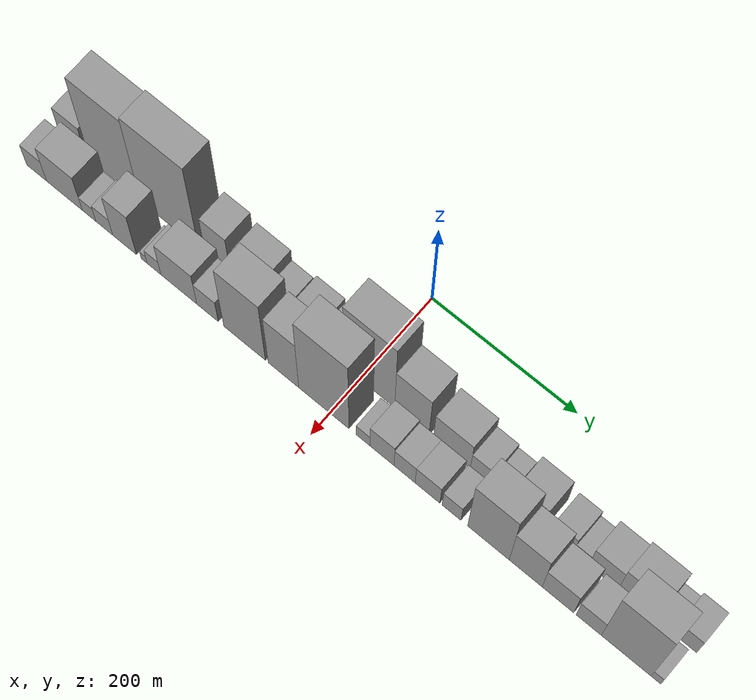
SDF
<sdf version="1.6">
 <world name="default">
  <scene>
   <sky><clouds><speed>12</speed></clouds></sky>
   <ambient>0.4 0.4 0.4 1</ambient>
   <background>0.7 0.7 0.7 1</background>
   <shadows>1</shadows>
  </scene>
  <gravity>0 0 -9.8066</gravity>
  <magnetic_field>6e-06 2.3e-05 -4.2e-05</magnetic_field>
  <physics default="0" name="default_physics" type="ode">
   <ode>
    <solver>
     <type>quick</type>
     <iters>10</iters>
     <sor>1.0</sor>
     <use_dynamic_moi_rescaling>0</use_dynamic_moi_rescaling>
    </solver>
    <constraints>
     <cfm>0</cfm>
     <erp>0.2</erp>
     <contact_max_correcting_vel>100</contact_max_correcting_vel>
     <contact_surface_layer>0.001</contact_surface_layer>
    </constraints>
   </ode>
   <max_step_size>0.004</max_step_size>
   <real_time_factor>1</real_time_factor>
   <real_time_update_rate>250</real_time_update_rate>
  </physics>
  <light name="sun" type="directional">
   <pose>0 0 10 0 0 0</pose>
   <diffuse>0.8 0.8 0.8 1</diffuse>
   <specular>0.2 0.2 0.2 1</specular>
   <attenuation>
    <range>1000</range>
    <constant>0.9</constant>
    <linear>0.01</linear>
    <quadratic>0.001</quadratic>
   </attenuation>
   <direction>-0.5 0.1 -0.9</direction>
  </light>
  <model name="building_1">
   <static>1</static>
   <pose>100.0000 -413.8434 0 0.000000 0.000000 0.000000</pose>
   <link name="link">
    <pose>0 0 37.50 0 0 0</pose>
    <collision name="collision"><geometry><box><size>40.0000 38.3133 75.0000</size></box></geometry></collision>
    <visual name="visual">
     <cast_shadows>0</cast_shadows>
     <geometry><box><size>40.0000 38.3133 75.0000</size></box></geometry>
     <material>
      <script>
       <uri>model://grey_wall/materials/scripts</uri>
       <uri>model://grey_wall/materials/textures</uri>
       <name>vrc/grey_wall</name>
      </script>
     </material>
    </visual>
   </link>
  </model>
  <model name="building_2">
   <static>1</static>
   <pose>100.0000 -351.5835 0 0.000000 0.000000 0.000000</pose>
   <link name="link">
    <pose>0 0 105.00 0 0 0</pose>
    <collision name="collision"><geometry><box><size>40.0000 74.2064 210.0000</size></box></geometry></collision>
    <visual name="visual">
     <cast_shadows>0</cast_shadows>
     <geometry><box><size>40.0000 74.2064 210.0000</size></box></geometry>
     <material>
      <script>
       <uri>model://grey_wall/materials/scripts</uri>
       <uri>model://grey_wall/materials/textures</uri>
       <name>vrc/grey_wall</name>
      </script>
     </material>
    </visual>
   </link>
  </model>
  <model name="building_3">
   <static>1</static>
   <pose>100.0000 -271.9472 0 0.000000 0.000000 0.000000</pose>
   <link name="link">
    <pose>0 0 109.50 0 0 0</pose>
    <collision name="collision"><geometry><box><size>40.0000 85.0663 219.0000</size></box></geometry></collision>
    <visual name="visual">
     <cast_shadows>0</cast_shadows>
     <geometry><box><size>40.0000 85.0663 219.0000</size></box></geometry>
     <material>
      <script>
       <uri>model://grey_wall/materials/scripts</uri>
       <uri>model://grey_wall/materials/textures</uri>
       <name>vrc/grey_wall</name>
      </script>
     </material>
    </visual>
   </link>
  </model>
  <model name="building_4">
   <static>1</static>
   <pose>100.0000 -201.3344 0 0.000000 0.000000 0.000000</pose>
   <link name="link">
    <pose>0 0 51.00 0 0 0</pose>
    <collision name="collision"><geometry><box><size>40.0000 36.1593 102.0000</size></box></geometry></collision>
    <visual name="visual">
     <cast_shadows>0</cast_shadows>
     <geometry><box><size>40.0000 36.1593 102.0000</size></box></geometry>
     <material>
      <script>
       <uri>model://grey_wall/materials/scripts</uri>
       <uri>model://grey_wall/materials/textures</uri>
       <name>vrc/grey_wall</name>
      </script>
     </material>
    </visual>
   </link>
  </model>
  <model name="building_5">
   <static>1</static>
   <pose>100.0000 -151.6545 0 0.000000 0.000000 0.000000</pose>
   <link name="link">
    <pose>0 0 43.50 0 0 0</pose>
    <collision name="collision"><geometry><box><size>40.0000 47.2005 87.0000</size></box></geometry></collision>
    <visual name="visual">
     <cast_shadows>0</cast_shadows>
     <geometry><box><size>40.0000 47.2005 87.0000</size></box></geometry>
     <material>
      <script>
       <uri>model://grey_wall/materials/scripts</uri>
       <uri>model://grey_wall/materials/textures</uri>
       <name>vrc/grey_wall</name>
      </script>
     </material>
    </visual>
   </link>
  </model>
  <model name="building_6">
   <static>1</static>
   <pose>100.0000 -113.1142 0 0.000000 0.000000 0.000000</pose>
   <link name="link">
    <pose>0 0 28.50 0 0 0</pose>
    <collision name="collision"><geometry><box><size>40.0000 29.8802 57.0000</size></box></geometry></collision>
    <visual name="visual">
     <cast_shadows>0</cast_shadows>
     <geometry><box><size>40.0000 29.8802 57.0000</size></box></geometry>
     <material>
      <script>
       <uri>model://grey_wall/materials/scripts</uri>
       <uri>model://grey_wall/materials/textures</uri>
       <name>vrc/grey_wall</name>
      </script>
     </material>
    </visual>
   </link>
  </model>
  <model name="building_7">
   <static>1</static>
   <pose>100.0000 -73.5311 0 0.000000 0.000000 0.000000</pose>
   <link name="link">
    <pose>0 0 36.00 0 0 0</pose>
    <collision name="collision"><geometry><box><size>40.0000 39.2860 72.0000</size></box></geometry></collision>
    <visual name="visual">
     <cast_shadows>0</cast_shadows>
     <geometry><box><size>40.0000 39.2860 72.0000</size></box></geometry>
     <material>
      <script>
       <uri>model://grey_wall/materials/scripts</uri>
       <uri>model://grey_wall/materials/textures</uri>
       <name>vrc/grey_wall</name>
      </script>
     </material>
    </visual>
   </link>
  </model>
  <model name="building_8">
   <static>1</static>
   <pose>100.0000 -38.1155 0 0.000000 0.000000 0.000000</pose>
   <link name="link">
    <pose>0 0 30.00 0 0 0</pose>
    <collision name="collision"><geometry><box><size>40.0000 31.5453 60.0000</size></box></geometry></collision>
    <visual name="visual">
     <cast_shadows>0</cast_shadows>
     <geometry><box><size>40.0000 31.5453 60.0000</size></box></geometry>
     <material>
      <script>
       <uri>model://grey_wall/materials/scripts</uri>
       <uri>model://grey_wall/materials/textures</uri>
       <name>vrc/grey_wall</name>
      </script>
     </material>
    </visual>
   </link>
  </model>
  <model name="building_9">
   <static>1</static>
   <pose>100.0000 12.9150 0 0.000000 0.000000 0.000000</pose>
   <link name="link">
    <pose>0 0 96.00 0 0 0</pose>
    <collision name="collision"><geometry><box><size>40.0000 70.5156 192.0000</size></box></geometry></collision>
    <visual name="visual">
     <cast_shadows>0</cast_shadows>
     <geometry><box><size>40.0000 70.5156 192.0000</size></box></geometry>
     <material>
      <script>
       <uri>model://grey_wall/materials/scripts</uri>
       <uri>model://grey_wall/materials/textures</uri>
       <name>vrc/grey_wall</name>
      </script>
     </material>
    </visual>
   </link>
  </model>
  <model name="building_10">
   <static>1</static>
   <pose>100.0000 71.7450 0 0.000000 0.000000 0.000000</pose>
   <link name="link">
    <pose>0 0 60.00 0 0 0</pose>
    <collision name="collision"><geometry><box><size>40.0000 47.1444 120.0000</size></box></geometry></collision>
    <visual name="visual">
     <cast_shadows>0</cast_shadows>
     <geometry><box><size>40.0000 47.1444 120.0000</size></box></geometry>
     <material>
      <script>
       <uri>model://grey_wall/materials/scripts</uri>
       <uri>model://grey_wall/materials/textures</uri>
       <name>vrc/grey_wall</name>
      </script>
     </material>
    </visual>
   </link>
  </model>
  <model name="building_11">
   <static>1</static>
   <pose>100.0000 126.4059 0 0.000000 0.000000 0.000000</pose>
   <link name="link">
    <pose>0 0 42.00 0 0 0</pose>
    <collision name="collision"><geometry><box><size>40.0000 50.1772 84.0000</size></box></geometry></collision>
    <visual name="visual">
     <cast_shadows>0</cast_shadows>
     <geometry><box><size>40.0000 50.1772 84.0000</size></box></geometry>
     <material>
      <script>
       <uri>model://grey_wall/materials/scripts</uri>
       <uri>model://grey_wall/materials/textures</uri>
       <name>vrc/grey_wall</name>
      </script>
     </material>
    </visual>
   </link>
  </model>
  <model name="building_12">
   <static>1</static>
   <pose>100.0000 166.1870 0 0.000000 0.000000 0.000000</pose>
   <link name="link">
    <pose>0 0 27.00 0 0 0</pose>
    <collision name="collision"><geometry><box><size>40.0000 29.3850 54.0000</size></box></geometry></collision>
    <visual name="visual">
     <cast_shadows>0</cast_shadows>
     <geometry><box><size>40.0000 29.3850 54.0000</size></box></geometry>
     <material>
      <script>
       <uri>model://grey_wall/materials/scripts</uri>
       <uri>model://grey_wall/materials/textures</uri>
       <name>vrc/grey_wall</name>
      </script>
     </material>
    </visual>
   </link>
  </model>
  <model name="building_13">
   <static>1</static>
   <pose>100.0000 193.1031 0 0.000000 0.000000 0.000000</pose>
   <link name="link">
    <pose>0 0 21.00 0 0 0</pose>
    <collision name="collision"><geometry><box><size>40.0000 24.4473 42.0000</size></box></geometry></collision>
    <visual name="visual">
     <cast_shadows>0</cast_shadows>
     <geometry><box><size>40.0000 24.4473 42.0000</size></box></geometry>
     <material>
      <script>
       <uri>model://grey_wall/materials/scripts</uri>
       <uri>model://grey_wall/materials/textures</uri>
       <name>vrc/grey_wall</name>
      </script>
     </material>
    </visual>
   </link>
  </model>
  <model name="building_14">
   <static>1</static>
   <pose>100.0000 230.0118 0 0.000000 0.000000 0.000000</pose>
   <link name="link">
    <pose>0 0 37.50 0 0 0</pose>
    <collision name="collision"><geometry><box><size>40.0000 41.3701 75.0000</size></box></geometry></collision>
    <visual name="visual">
     <cast_shadows>0</cast_shadows>
     <geometry><box><size>40.0000 41.3701 75.0000</size></box></geometry>
     <material>
      <script>
       <uri>model://grey_wall/materials/scripts</uri>
       <uri>model://grey_wall/materials/textures</uri>
       <name>vrc/grey_wall</name>
      </script>
     </material>
    </visual>
   </link>
  </model>
  <model name="building_15">
   <static>1</static>
   <pose>100.0000 274.9624 0 0.000000 0.000000 0.000000</pose>
   <link name="link">
    <pose>0 0 27.00 0 0 0</pose>
    <collision name="collision"><geometry><box><size>40.0000 30.5310 54.0000</size></box></geometry></collision>
    <visual name="visual">
     <cast_shadows>0</cast_shadows>
     <geometry><box><size>40.0000 30.5310 54.0000</size></box></geometry>
     <material>
      <script>
       <uri>model://grey_wall/materials/scripts</uri>
       <uri>model://grey_wall/materials/textures</uri>
       <name>vrc/grey_wall</name>
      </script>
     </material>
    </visual>
   </link>
  </model>
  <model name="building_16">
   <static>1</static>
   <pose>100.0000 300.3719 0 0.000000 0.000000 0.000000</pose>
   <link name="link">
    <pose>0 0 18.00 0 0 0</pose>
    <collision name="collision"><geometry><box><size>40.0000 20.2881 36.0000</size></box></geometry></collision>
    <visual name="visual">
     <cast_shadows>0</cast_shadows>
     <geometry><box><size>40.0000 20.2881 36.0000</size></box></geometry>
     <material>
      <script>
       <uri>model://grey_wall/materials/scripts</uri>
       <uri>model://grey_wall/materials/textures</uri>
       <name>vrc/grey_wall</name>
      </script>
     </material>
    </visual>
   </link>
  </model>
  <model name="building_17">
   <static>1</static>
   <pose>100.0000 329.7870 0 0.000000 0.000000 0.000000</pose>
   <link name="link">
    <pose>0 0 34.50 0 0 0</pose>
    <collision name="collision"><geometry><box><size>40.0000 38.5421 69.0000</size></box></geometry></collision>
    <visual name="visual">
     <cast_shadows>0</cast_shadows>
     <geometry><box><size>40.0000 38.5421 69.0000</size></box></geometry>
     <material>
      <script>
       <uri>model://grey_wall/materials/scripts</uri>
       <uri>model://grey_wall/materials/textures</uri>
       <name>vrc/grey_wall</name>
      </script>
     </material>
    </visual>
   </link>
  </model>
  <model name="building_18">
   <static>1</static>
   <pose>100.0000 373.8035 0 0.000000 0.000000 0.000000</pose>
   <link name="link">
    <pose>0 0 42.00 0 0 0</pose>
    <collision name="collision"><geometry><box><size>40.0000 49.4909 84.0000</size></box></geometry></collision>
    <visual name="visual">
     <cast_shadows>0</cast_shadows>
     <geometry><box><size>40.0000 49.4909 84.0000</size></box></geometry>
     <material>
      <script>
       <uri>model://grey_wall/materials/scripts</uri>
       <uri>model://grey_wall/materials/textures</uri>
       <name>vrc/grey_wall</name>
      </script>
     </material>
    </visual>
   </link>
  </model>
  <model name="building_19">
   <static>1</static>
   <pose>100.0000 408.7993 0 0.000000 0.000000 0.000000</pose>
   <link name="link">
    <pose>0 0 18.00 0 0 0</pose>
    <collision name="collision"><geometry><box><size>40.0000 20.5007 36.0000</size></box></geometry></collision>
    <visual name="visual">
     <cast_shadows>0</cast_shadows>
     <geometry><box><size>40.0000 20.5007 36.0000</size></box></geometry>
     <material>
      <script>
       <uri>model://grey_wall/materials/scripts</uri>
       <uri>model://grey_wall/materials/textures</uri>
       <name>vrc/grey_wall</name>
      </script>
     </material>
    </visual>
   </link>
  </model>
  <model name="building_20">
   <static>1</static>
   <pose>100.0000 434.9846 0 0.000000 0.000000 0.000000</pose>
   <link name="link">
    <pose>0 0 27.00 0 0 0</pose>
    <collision name="collision"><geometry><box><size>40.0000 31.8700 54.0000</size></box></geometry></collision>
    <visual name="visual">
     <cast_shadows>0</cast_shadows>
     <geometry><box><size>40.0000 31.8700 54.0000</size></box></geometry>
     <material>
      <script>
       <uri>model://grey_wall/materials/scripts</uri>
       <uri>model://grey_wall/materials/textures</uri>
       <name>vrc/grey_wall</name>
      </script>
     </material>
    </visual>
   </link>
  </model>
  <model name="building_21">
   <static>1</static>
   <pose>149.0000 -423.0681 0 0.000000 0.000000 0.000000</pose>
   <link name="link">
    <pose>0 0 27.00 0 0 0</pose>
    <collision name="collision"><geometry><box><size>40.0000 29.8639 54.0000</size></box></geometry></collision>
    <visual name="visual">
     <cast_shadows>0</cast_shadows>
     <geometry><box><size>40.0000 29.8639 54.0000</size></box></geometry>
     <material>
      <script>
       <uri>model://grey_wall/materials/scripts</uri>
       <uri>model://grey_wall/materials/textures</uri>
       <name>vrc/grey_wall</name>
      </script>
     </material>
    </visual>
   </link>
  </model>
  <model name="building_22">
   <static>1</static>
   <pose>149.0000 -381.6020 0 0.000000 0.000000 0.000000</pose>
   <link name="link">
    <pose>0 0 45.00 0 0 0</pose>
    <collision name="collision"><geometry><box><size>40.0000 53.0682 90.0000</size></box></geometry></collision>
    <visual name="visual">
     <cast_shadows>0</cast_shadows>
     <geometry><box><size>40.0000 53.0682 90.0000</size></box></geometry>
     <material>
      <script>
       <uri>model://grey_wall/materials/scripts</uri>
       <uri>model://grey_wall/materials/textures</uri>
       <name>vrc/grey_wall</name>
      </script>
     </material>
    </visual>
   </link>
  </model>
  <model name="building_23">
   <static>1</static>
   <pose>149.0000 -345.0652 0 0.000000 0.000000 0.000000</pose>
   <link name="link">
    <pose>0 0 18.00 0 0 0</pose>
    <collision name="collision"><geometry><box><size>40.0000 20.0055 36.0000</size></box></geometry></collision>
    <visual name="visual">
     <cast_shadows>0</cast_shadows>
     <geometry><box><size>40.0000 20.0055 36.0000</size></box></geometry>
     <material>
      <script>
       <uri>model://grey_wall/materials/scripts</uri>
       <uri>model://grey_wall/materials/textures</uri>
       <name>vrc/grey_wall</name>
      </script>
     </material>
    </visual>
   </link>
  </model>
  <model name="building_24">
   <static>1</static>
   <pose>149.0000 -322.6117 0 0.000000 0.000000 0.000000</pose>
   <link name="link">
    <pose>0 0 22.50 0 0 0</pose>
    <collision name="collision"><geometry><box><size>40.0000 24.9014 45.0000</size></box></geometry></collision>
    <visual name="visual">
     <cast_shadows>0</cast_shadows>
     <geometry><box><size>40.0000 24.9014 45.0000</size></box></geometry>
     <material>
      <script>
       <uri>model://grey_wall/materials/scripts</uri>
       <uri>model://grey_wall/materials/textures</uri>
       <name>vrc/grey_wall</name>
      </script>
     </material>
    </visual>
   </link>
  </model>
  <model name="building_25">
   <static>1</static>
   <pose>149.0000 -292.9687 0 0.000000 0.000000 0.000000</pose>
   <link name="link">
    <pose>0 0 54.00 0 0 0</pose>
    <collision name="collision"><geometry><box><size>40.0000 34.3846 108.0000</size></box></geometry></collision>
    <visual name="visual">
     <cast_shadows>0</cast_shadows>
     <geometry><box><size>40.0000 34.3846 108.0000</size></box></geometry>
     <material>
      <script>
       <uri>model://grey_wall/materials/scripts</uri>
       <uri>model://grey_wall/materials/textures</uri>
       <name>vrc/grey_wall</name>
      </script>
     </material>
    </visual>
   </link>
  </model>
  <model name="building_26">
   <static>1</static>
   <pose>149.0000 -264.5437 0 0.000000 0.000000 0.000000</pose>
   <link name="link">
    <pose>0 0 10.50 0 0 0</pose>
    <collision name="collision"><geometry><box><size>40.0000 8.4655 21.0000</size></box></geometry></collision>
    <visual name="visual">
     <cast_shadows>0</cast_shadows>
     <geometry><box><size>40.0000 8.4655 21.0000</size></box></geometry>
     <material>
      <script>
       <uri>model://grey_wall/materials/scripts</uri>
       <uri>model://grey_wall/materials/textures</uri>
       <name>vrc/grey_wall</name>
      </script>
     </material>
    </visual>
   </link>
  </model>
  <model name="building_27">
   <static>1</static>
   <pose>149.0000 -250.2185 0 0.000000 0.000000 0.000000</pose>
   <link name="link">
    <pose>0 0 19.50 0 0 0</pose>
    <collision name="collision"><geometry><box><size>40.0000 20.1848 39.0000</size></box></geometry></collision>
    <visual name="visual">
     <cast_shadows>0</cast_shadows>
     <geometry><box><size>40.0000 20.1848 39.0000</size></box></geometry>
     <material>
      <script>
       <uri>model://grey_wall/materials/scripts</uri>
       <uri>model://grey_wall/materials/textures</uri>
       <name>vrc/grey_wall</name>
      </script>
     </material>
    </visual>
   </link>
  </model>
  <model name="building_28">
   <static>1</static>
   <pose>149.0000 -214.1479 0 0.000000 0.000000 0.000000</pose>
   <link name="link">
    <pose>0 0 43.50 0 0 0</pose>
    <collision name="collision"><geometry><box><size>40.0000 51.9564 87.0000</size></box></geometry></collision>
    <visual name="visual">
     <cast_shadows>0</cast_shadows>
     <geometry><box><size>40.0000 51.9564 87.0000</size></box></geometry>
     <material>
      <script>
       <uri>model://grey_wall/materials/scripts</uri>
       <uri>model://grey_wall/materials/textures</uri>
       <name>vrc/grey_wall</name>
      </script>
     </material>
    </visual>
   </link>
  </model>
  <model name="building_29">
   <static>1</static>
   <pose>149.0000 -172.8805 0 0.000000 0.000000 0.000000</pose>
   <link name="link">
    <pose>0 0 30.00 0 0 0</pose>
    <collision name="collision"><geometry><box><size>40.0000 30.5786 60.0000</size></box></geometry></collision>
    <visual name="visual">
     <cast_shadows>0</cast_shadows>
     <geometry><box><size>40.0000 30.5786 60.0000</size></box></geometry>
     <material>
      <script>
       <uri>model://grey_wall/materials/scripts</uri>
       <uri>model://grey_wall/materials/textures</uri>
       <name>vrc/grey_wall</name>
      </script>
     </material>
    </visual>
   </link>
  </model>
  <model name="building_30">
   <static>1</static>
   <pose>149.0000 -120.0359 0 0.000000 0.000000 0.000000</pose>
   <link name="link">
    <pose>0 0 85.50 0 0 0</pose>
    <collision name="collision"><geometry><box><size>40.0000 59.1105 171.0000</size></box></geometry></collision>
    <visual name="visual">
     <cast_shadows>0</cast_shadows>
     <geometry><box><size>40.0000 59.1105 171.0000</size></box></geometry>
     <material>
      <script>
       <uri>model://grey_wall/materials/scripts</uri>
       <uri>model://grey_wall/materials/textures</uri>
       <name>vrc/grey_wall</name>
      </script>
     </material>
    </visual>
   </link>
  </model>
  <model name="building_31">
   <static>1</static>
   <pose>149.0000 -65.0369 0 0.000000 0.000000 0.000000</pose>
   <link name="link">
    <pose>0 0 70.50 0 0 0</pose>
    <collision name="collision"><geometry><box><size>40.0000 42.8875 141.0000</size></box></geometry></collision>
    <visual name="visual">
     <cast_shadows>0</cast_shadows>
     <geometry><box><size>40.0000 42.8875 141.0000</size></box></geometry>
     <material>
      <script>
       <uri>model://grey_wall/materials/scripts</uri>
       <uri>model://grey_wall/materials/textures</uri>
       <name>vrc/grey_wall</name>
      </script>
     </material>
    </visual>
   </link>
  </model>
  <model name="building_32">
   <static>1</static>
   <pose>149.0000 -8.5797 0 0.000000 0.000000 0.000000</pose>
   <link name="link">
    <pose>0 0 105.00 0 0 0</pose>
    <collision name="collision"><geometry><box><size>40.0000 70.0270 210.0000</size></box></geometry></collision>
    <visual name="visual">
     <cast_shadows>0</cast_shadows>
     <geometry><box><size>40.0000 70.0270 210.0000</size></box></geometry>
     <material>
      <script>
       <uri>model://grey_wall/materials/scripts</uri>
       <uri>model://grey_wall/materials/textures</uri>
       <name>vrc/grey_wall</name>
      </script>
     </material>
    </visual>
   </link>
  </model>
  <model name="building_33">
   <static>1</static>
   <pose>149.0000 45.8425 0 0.000000 0.000000 0.000000</pose>
   <link name="link">
    <pose>0 0 16.50 0 0 0</pose>
    <collision name="collision"><geometry><box><size>40.0000 18.8173 33.0000</size></box></geometry></collision>
    <visual name="visual">
     <cast_shadows>0</cast_shadows>
     <geometry><box><size>40.0000 18.8173 33.0000</size></box></geometry>
     <material>
      <script>
       <uri>model://grey_wall/materials/scripts</uri>
       <uri>model://grey_wall/materials/textures</uri>
       <name>vrc/grey_wall</name>
      </script>
     </material>
    </visual>
   </link>
  </model>
  <model name="building_34">
   <static>1</static>
   <pose>149.0000 71.8569 0 0.000000 0.000000 0.000000</pose>
   <link name="link">
    <pose>0 0 33.00 0 0 0</pose>
    <collision name="collision"><geometry><box><size>40.0000 33.2116 66.0000</size></box></geometry></collision>
    <visual name="visual">
     <cast_shadows>0</cast_shadows>
     <geometry><box><size>40.0000 33.2116 66.0000</size></box></geometry>
     <material>
      <script>
       <uri>model://grey_wall/materials/scripts</uri>
       <uri>model://grey_wall/materials/textures</uri>
       <name>vrc/grey_wall</name>
      </script>
     </material>
    </visual>
   </link>
  </model>
  <model name="building_35">
   <static>1</static>
   <pose>149.0000 102.9097 0 0.000000 0.000000 0.000000</pose>
   <link name="link">
    <pose>0 0 28.50 0 0 0</pose>
    <collision name="collision"><geometry><box><size>40.0000 28.8939 57.0000</size></box></geometry></collision>
    <visual name="visual">
     <cast_shadows>0</cast_shadows>
     <geometry><box><size>40.0000 28.8939 57.0000</size></box></geometry>
     <material>
      <script>
       <uri>model://grey_wall/materials/scripts</uri>
       <uri>model://grey_wall/materials/textures</uri>
       <name>vrc/grey_wall</name>
      </script>
     </material>
    </visual>
   </link>
  </model>
  <model name="building_36">
   <static>1</static>
   <pose>149.0000 134.1369 0 0.000000 0.000000 0.000000</pose>
   <link name="link">
    <pose>0 0 28.50 0 0 0</pose>
    <collision name="collision"><geometry><box><size>40.0000 33.5605 57.0000</size></box></geometry></collision>
    <visual name="visual">
     <cast_shadows>0</cast_shadows>
     <geometry><box><size>40.0000 33.5605 57.0000</size></box></geometry>
     <material>
      <script>
       <uri>model://grey_wall/materials/scripts</uri>
       <uri>model://grey_wall/materials/textures</uri>
       <name>vrc/grey_wall</name>
      </script>
     </material>
    </visual>
   </link>
  </model>
  <model name="building_37">
   <static>1</static>
   <pose>149.0000 166.6847 0 0.000000 0.000000 0.000000</pose>
   <link name="link">
    <pose>0 0 24.00 0 0 0</pose>
    <collision name="collision"><geometry><box><size>40.0000 25.5351 48.0000</size></box></geometry></collision>
    <visual name="visual">
     <cast_shadows>0</cast_shadows>
     <geometry><box><size>40.0000 25.5351 48.0000</size></box></geometry>
     <material>
      <script>
       <uri>model://grey_wall/materials/scripts</uri>
       <uri>model://grey_wall/materials/textures</uri>
       <name>vrc/grey_wall</name>
      </script>
     </material>
    </visual>
   </link>
  </model>
  <model name="building_38">
   <static>1</static>
   <pose>149.0000 216.2814 0 0.000000 0.000000 0.000000</pose>
   <link name="link">
    <pose>0 0 79.50 0 0 0</pose>
    <collision name="collision"><geometry><box><size>40.0000 55.6584 159.0000</size></box></geometry></collision>
    <visual name="visual">
     <cast_shadows>0</cast_shadows>
     <geometry><box><size>40.0000 55.6584 159.0000</size></box></geometry>
     <material>
      <script>
       <uri>model://grey_wall/materials/scripts</uri>
       <uri>model://grey_wall/materials/textures</uri>
       <name>vrc/grey_wall</name>
      </script>
     </material>
    </visual>
   </link>
  </model>
  <model name="building_39">
   <static>1</static>
   <pose>149.0000 266.0023 0 0.000000 0.000000 0.000000</pose>
   <link name="link">
    <pose>0 0 55.50 0 0 0</pose>
    <collision name="collision"><geometry><box><size>40.0000 43.7834 111.0000</size></box></geometry></collision>
    <visual name="visual">
     <cast_shadows>0</cast_shadows>
     <geometry><box><size>40.0000 43.7834 111.0000</size></box></geometry>
     <material>
      <script>
       <uri>model://grey_wall/materials/scripts</uri>
       <uri>model://grey_wall/materials/textures</uri>
       <name>vrc/grey_wall</name>
      </script>
     </material>
    </visual>
   </link>
  </model>
  <model name="building_40">
   <static>1</static>
   <pose>149.0000 308.7176 0 0.000000 0.000000 0.000000</pose>
   <link name="link">
    <pose>0 0 36.00 0 0 0</pose>
    <collision name="collision"><geometry><box><size>40.0000 41.6472 72.0000</size></box></geometry></collision>
    <visual name="visual">
     <cast_shadows>0</cast_shadows>
     <geometry><box><size>40.0000 41.6472 72.0000</size></box></geometry>
     <material>
      <script>
       <uri>model://grey_wall/materials/scripts</uri>
       <uri>model://grey_wall/materials/textures</uri>
       <name>vrc/grey_wall</name>
      </script>
     </material>
    </visual>
   </link>
  </model>
  <model name="building_41">
   <static>1</static>
   <pose>149.0000 349.0609 0 0.000000 0.000000 0.000000</pose>
   <link name="link">
    <pose>0 0 28.50 0 0 0</pose>
    <collision name="collision"><geometry><box><size>40.0000 33.0392 57.0000</size></box></geometry></collision>
    <visual name="visual">
     <cast_shadows>0</cast_shadows>
     <geometry><box><size>40.0000 33.0392 57.0000</size></box></geometry>
     <material>
      <script>
       <uri>model://grey_wall/materials/scripts</uri>
       <uri>model://grey_wall/materials/textures</uri>
       <name>vrc/grey_wall</name>
      </script>
     </material>
    </visual>
   </link>
  </model>
  <model name="building_42">
   <static>1</static>
   <pose>149.0000 397.9539 0 0.000000 0.000000 0.000000</pose>
   <link name="link">
    <pose>0 0 91.50 0 0 0</pose>
    <collision name="collision"><geometry><box><size>40.0000 64.7468 183.0000</size></box></geometry></collision>
    <visual name="visual">
     <cast_shadows>0</cast_shadows>
     <geometry><box><size>40.0000 64.7468 183.0000</size></box></geometry>
     <material>
      <script>
       <uri>model://grey_wall/materials/scripts</uri>
       <uri>model://grey_wall/materials/textures</uri>
       <name>vrc/grey_wall</name>
      </script>
     </material>
    </visual>
   </link>
  </model>
  <model name="building_43">
   <static>1</static>
   <pose>149.0000 436.6059 0 0.000000 0.000000 0.000000</pose>
   <link name="link">
    <pose>0 0 13.50 0 0 0</pose>
    <collision name="collision"><geometry><box><size>40.0000 12.5572 27.0000</size></box></geometry></collision>
    <visual name="visual">
     <cast_shadows>0</cast_shadows>
     <geometry><box><size>40.0000 12.5572 27.0000</size></box></geometry>
     <material>
      <script>
       <uri>model://grey_wall/materials/scripts</uri>
       <uri>model://grey_wall/materials/textures</uri>
       <name>vrc/grey_wall</name>
      </script>
     </material>
    </visual>
   </link>
  </model>
 </world>
</sdf>
